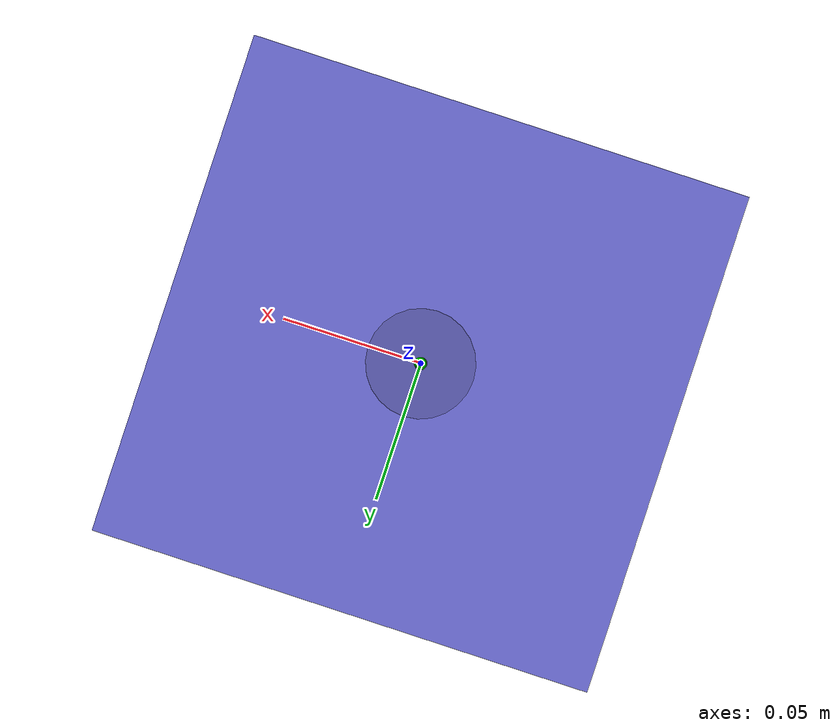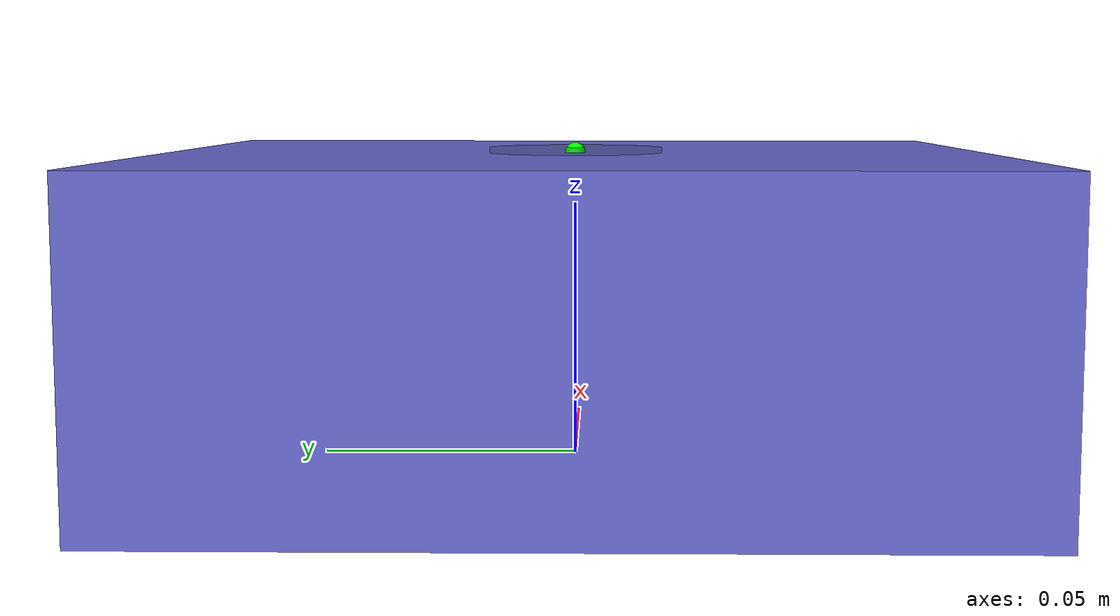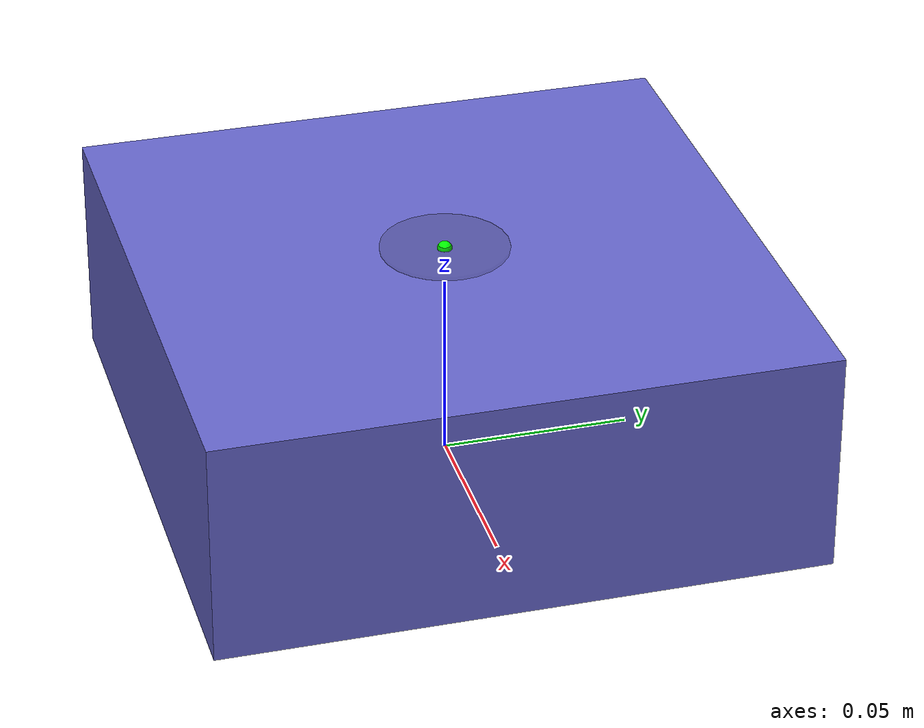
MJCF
<mujoco model="hole_fixture">
  <worldbody>
    <body name="fixture">
      <!-- Main block: bottom face now at z=0, top at z=0.06 -->
      <geom type="box" size="0.08 0.08 0.03" pos="0 0 0.03"
            rgba="0.4 0.4 0.8 0.9"
            mass="1.0"
            contype="0" conaffinity="0"
            friction="1.0 0.005 0.0001"/>

      <!-- Visual hole cylinder, same offset -->
      <geom type="cylinder" size="0.017 0.031" pos="0 0 0.03"
            rgba="0.1 0.1 0.1 0.1"
            contype="0" conaffinity="0"
            mass="0"/>

      <!-- Hole entrance: top surface, z=0.06 -->
      <site name="hole_entrance" pos="0 0 0.06"
            size="0.002" rgba="0 1 0 1"/>

      <!-- Hole bottom: z=0.01 (was -0.02, shifted by +0.03) -->
      <site name="hole_bottom" pos="0 0 0.01"
            size="0.002" rgba="0 0 1 1"/>
    </body>
  </worldbody>
</mujoco>
